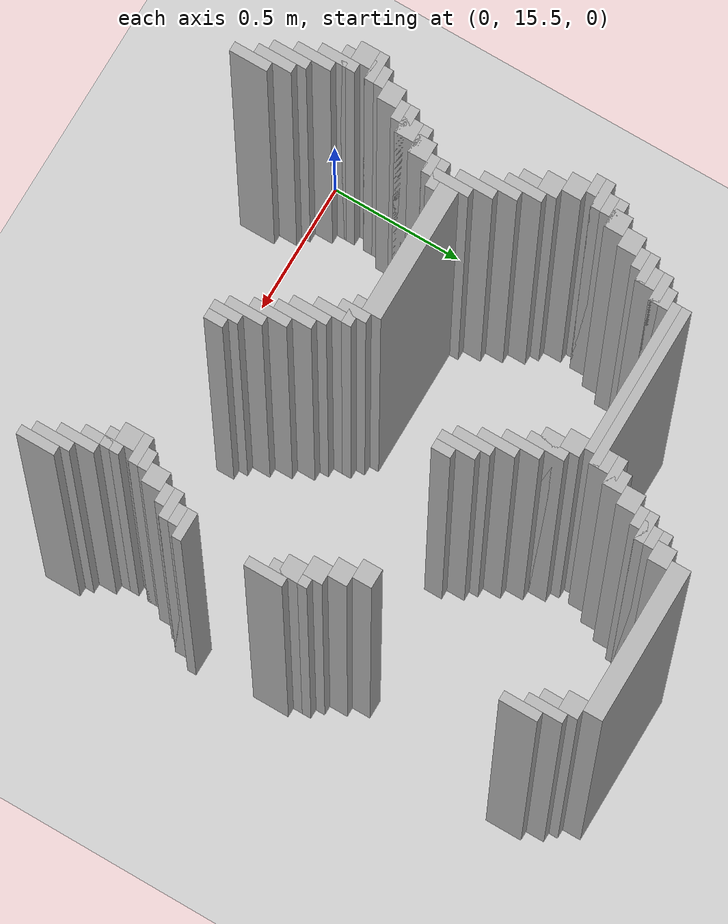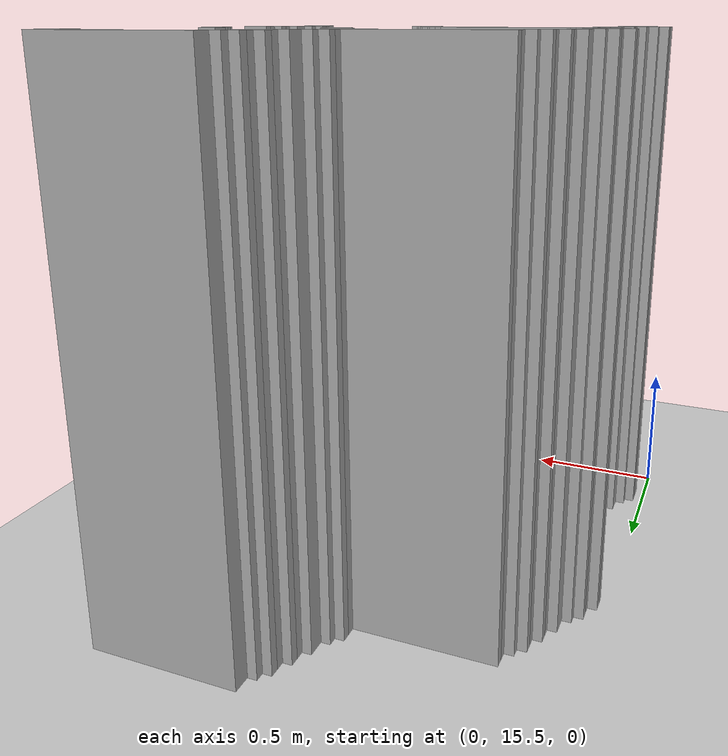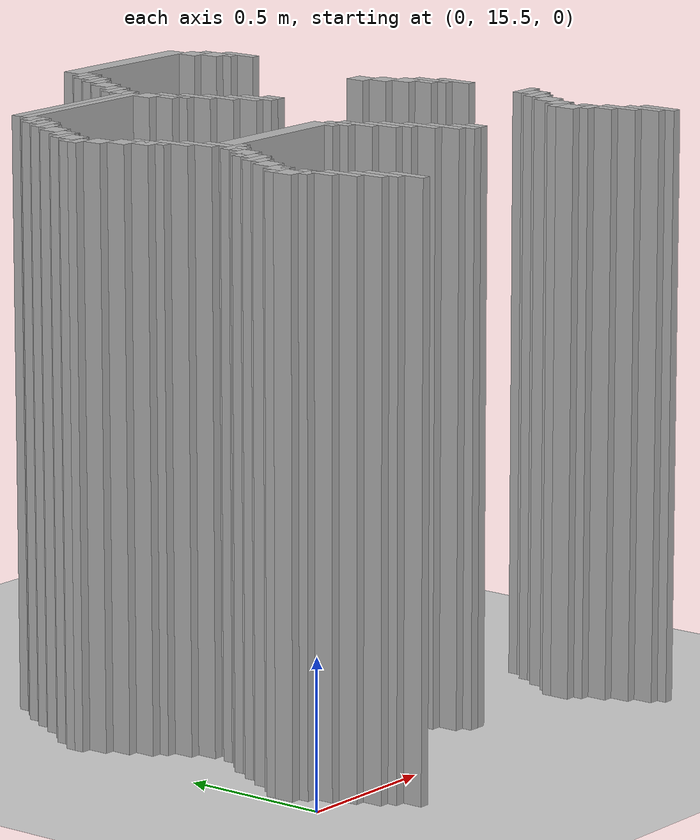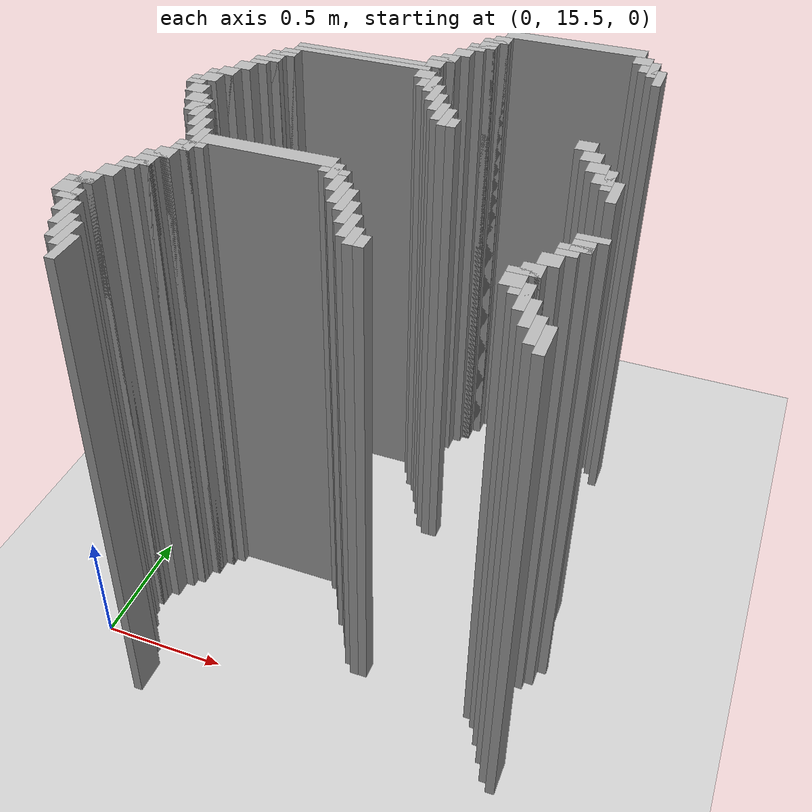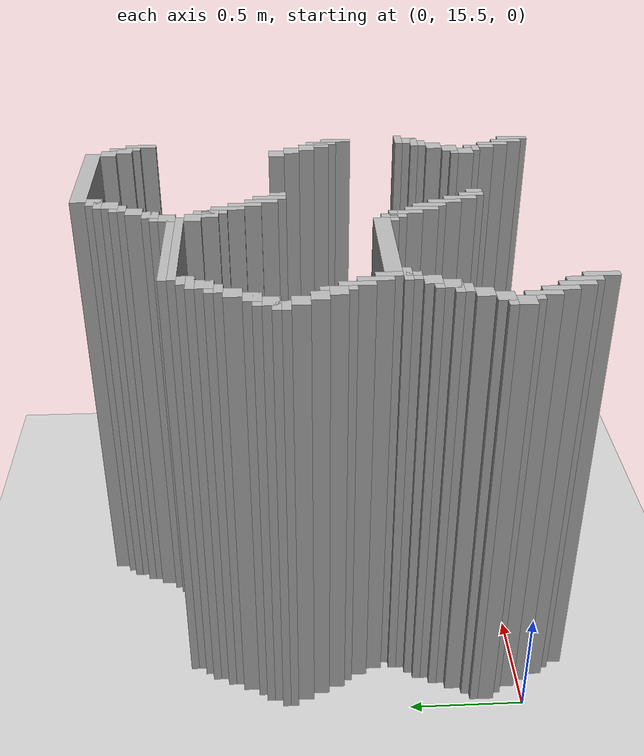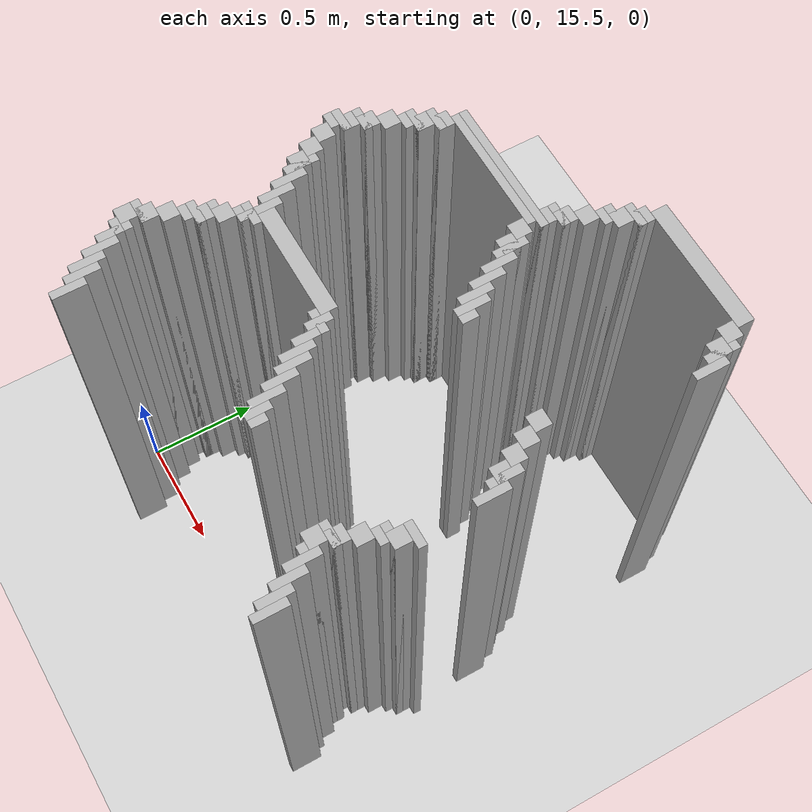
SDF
<sdf version="1.6">
 <world name="slam_world">
  <model name="ground_plane">
   <static>true</static>
   <link name="link">
    <collision name="collision">
     <geometry><plane><normal>0 0 1</normal><size>100 100</size></plane></geometry>
    </collision>
    <visual name="visual">
     <geometry><plane><normal>0 0 1</normal><size>100 100</size></plane></geometry>
     <material>
      <ambient>0.8 0.8 0.8 1</ambient>
      <diffuse>0.8 0.8 0.8 1</diffuse>
      <specular>0.8 0.8 0.8 1</specular>
     </material>
    </visual>
   </link>
  </model>
  <model name="wall_0">
   <static>true</static>
   <pose>1.2877030162412992 17.366589327146173 1.0 0 0 0</pose>
   <link name="link">
    <collision name="collision">
     <geometry><box><size>0.5568445475638051 0.06960556844547564 2.0</size></box></geometry>
    </collision>
    <visual name="visual">
     <geometry><box><size>0.5568445475638051 0.06960556844547564 2.0</size></box></geometry>
     <material><ambient>0.5 0.5 0.5 1</ambient><diffuse>0.7 0.7 0.7 1</diffuse></material>
    </visual>
   </link>
  </model>
  <model name="wall_11">
   <static>true</static>
   <pose>1.0092807424593968 17.296983758700694 1.0 0 0 0</pose>
   <link name="link">
    <collision name="collision">
     <geometry><box><size>0.06960556844547564 0.06960556844547564 2.0</size></box></geometry>
    </collision>
    <visual name="visual">
     <geometry><box><size>0.06960556844547564 0.06960556844547564 2.0</size></box></geometry>
     <material><ambient>0.5 0.5 0.5 1</ambient><diffuse>0.7 0.7 0.7 1</diffuse></material>
    </visual>
   </link>
  </model>
  <model name="wall_12">
   <static>true</static>
   <pose>1.5661252900232019 17.296983758700694 1.0 0 0 0</pose>
   <link name="link">
    <collision name="collision">
     <geometry><box><size>0.06960556844547564 0.06960556844547564 2.0</size></box></geometry>
    </collision>
    <visual name="visual">
     <geometry><box><size>0.06960556844547564 0.06960556844547564 2.0</size></box></geometry>
     <material><ambient>0.5 0.5 0.5 1</ambient><diffuse>0.7 0.7 0.7 1</diffuse></material>
    </visual>
   </link>
  </model>
  <model name="wall_31">
   <static>true</static>
   <pose>0.9918793503480278 17.279582366589327 1.0 0 0 0</pose>
   <link name="link">
    <collision name="collision">
     <geometry><box><size>0.10440835266821345 0.03480278422273782 2.0</size></box></geometry>
    </collision>
    <visual name="visual">
     <geometry><box><size>0.10440835266821345 0.03480278422273782 2.0</size></box></geometry>
     <material><ambient>0.5 0.5 0.5 1</ambient><diffuse>0.7 0.7 0.7 1</diffuse></material>
    </visual>
   </link>
  </model>
  <model name="wall_32">
   <static>true</static>
   <pose>1.6183294663573085 17.22737819025522 1.0 0 0 0</pose>
   <link name="link">
    <collision name="collision">
     <geometry><box><size>0.03480278422273782 0.13921113689095127 2.0</size></box></geometry>
    </collision>
    <visual name="visual">
     <geometry><box><size>0.03480278422273782 0.13921113689095127 2.0</size></box></geometry>
     <material><ambient>0.5 0.5 0.5 1</ambient><diffuse>0.7 0.7 0.7 1</diffuse></material>
    </visual>
   </link>
  </model>
  <model name="wall_51">
   <static>true</static>
   <pose>0.974477958236659 17.22737819025522 1.0 0 0 0</pose>
   <link name="link">
    <collision name="collision">
     <geometry><box><size>0.06960556844547564 0.06960556844547564 2.0</size></box></geometry>
    </collision>
    <visual name="visual">
     <geometry><box><size>0.06960556844547564 0.06960556844547564 2.0</size></box></geometry>
     <material><ambient>0.5 0.5 0.5 1</ambient><diffuse>0.7 0.7 0.7 1</diffuse></material>
    </visual>
   </link>
  </model>
  <model name="wall_52">
   <static>true</static>
   <pose>1.6009280742459395 17.22737819025522 1.0 0 0 0</pose>
   <link name="link">
    <collision name="collision">
     <geometry><box><size>0.06960556844547564 0.06960556844547564 2.0</size></box></geometry>
    </collision>
    <visual name="visual">
     <geometry><box><size>0.06960556844547564 0.06960556844547564 2.0</size></box></geometry>
     <material><ambient>0.5 0.5 0.5 1</ambient><diffuse>0.7 0.7 0.7 1</diffuse></material>
    </visual>
   </link>
  </model>
  <model name="wall_71">
   <static>true</static>
   <pose>0.95707656612529 17.209976798143853 1.0 0 0 0</pose>
   <link name="link">
    <collision name="collision">
     <geometry><box><size>0.10440835266821345 0.03480278422273782 2.0</size></box></geometry>
    </collision>
    <visual name="visual">
     <geometry><box><size>0.10440835266821345 0.03480278422273782 2.0</size></box></geometry>
     <material><ambient>0.5 0.5 0.5 1</ambient><diffuse>0.7 0.7 0.7 1</diffuse></material>
    </visual>
   </link>
  </model>
  <model name="wall_72">
   <static>true</static>
   <pose>1.6531322505800463 17.157772621809745 1.0 0 0 0</pose>
   <link name="link">
    <collision name="collision">
     <geometry><box><size>0.03480278422273782 0.13921113689095127 2.0</size></box></geometry>
    </collision>
    <visual name="visual">
     <geometry><box><size>0.03480278422273782 0.13921113689095127 2.0</size></box></geometry>
     <material><ambient>0.5 0.5 0.5 1</ambient><diffuse>0.7 0.7 0.7 1</diffuse></material>
    </visual>
   </link>
  </model>
  <model name="wall_91">
   <static>true</static>
   <pose>0.9396751740139211 17.17517401392111 1.0 0 0 0</pose>
   <link name="link">
    <collision name="collision">
     <geometry><box><size>0.06960556844547564 0.03480278422273782 2.0</size></box></geometry>
    </collision>
    <visual name="visual">
     <geometry><box><size>0.06960556844547564 0.03480278422273782 2.0</size></box></geometry>
     <material><ambient>0.5 0.5 0.5 1</ambient><diffuse>0.7 0.7 0.7 1</diffuse></material>
    </visual>
   </link>
  </model>
  <model name="wall_101">
   <static>true</static>
   <pose>0.9048723897911832 17.122969837587007 1.0 0 0 0</pose>
   <link name="link">
    <collision name="collision">
     <geometry><box><size>0.06960556844547564 0.06960556844547564 2.0</size></box></geometry>
    </collision>
    <visual name="visual">
     <geometry><box><size>0.06960556844547564 0.06960556844547564 2.0</size></box></geometry>
     <material><ambient>0.5 0.5 0.5 1</ambient><diffuse>0.7 0.7 0.7 1</diffuse></material>
    </visual>
   </link>
  </model>
  <model name="wall_121">
   <static>true</static>
   <pose>0.8700696055684455 17.053364269141532 1.0 0 0 0</pose>
   <link name="link">
    <collision name="collision">
     <geometry><box><size>0.06960556844547564 0.06960556844547564 2.0</size></box></geometry>
    </collision>
    <visual name="visual">
     <geometry><box><size>0.06960556844547564 0.06960556844547564 2.0</size></box></geometry>
     <material><ambient>0.5 0.5 0.5 1</ambient><diffuse>0.7 0.7 0.7 1</diffuse></material>
    </visual>
   </link>
  </model>
  <model name="wall_141">
   <static>true</static>
   <pose>0.8526682134570766 17.035962877030162 1.0 0 0 0</pose>
   <link name="link">
    <collision name="collision">
     <geometry><box><size>0.10440835266821345 0.03480278422273782 2.0</size></box></geometry>
    </collision>
    <visual name="visual">
     <geometry><box><size>0.10440835266821345 0.03480278422273782 2.0</size></box></geometry>
     <material><ambient>0.5 0.5 0.5 1</ambient><diffuse>0.7 0.7 0.7 1</diffuse></material>
    </visual>
   </link>
  </model>
  <model name="wall_161">
   <static>true</static>
   <pose>0.8352668213457076 16.983758700696054 1.0 0 0 0</pose>
   <link name="link">
    <collision name="collision">
     <geometry><box><size>0.06960556844547564 0.06960556844547564 2.0</size></box></geometry>
    </collision>
    <visual name="visual">
     <geometry><box><size>0.06960556844547564 0.06960556844547564 2.0</size></box></geometry>
     <material><ambient>0.5 0.5 0.5 1</ambient><diffuse>0.7 0.7 0.7 1</diffuse></material>
    </visual>
   </link>
  </model>
  <model name="wall_171">
   <static>true</static>
   <pose>0.574245939675174 16.966357308584687 1.0 0 0 0</pose>
   <link name="link">
    <collision name="collision">
     <geometry><box><size>0.5916473317865429 0.03480278422273782 2.0</size></box></geometry>
    </collision>
    <visual name="visual">
     <geometry><box><size>0.5916473317865429 0.03480278422273782 2.0</size></box></geometry>
     <material><ambient>0.5 0.5 0.5 1</ambient><diffuse>0.7 0.7 0.7 1</diffuse></material>
    </visual>
   </link>
  </model>
  <model name="wall_182">
   <static>true</static>
   <pose>0.5568445475638051 16.93155452436195 1.0 0 0 0</pose>
   <link name="link">
    <collision name="collision">
     <geometry><box><size>0.5568445475638051 0.03480278422273782 2.0</size></box></geometry>
    </collision>
    <visual name="visual">
     <geometry><box><size>0.5568445475638051 0.03480278422273782 2.0</size></box></geometry>
     <material><ambient>0.5 0.5 0.5 1</ambient><diffuse>0.7 0.7 0.7 1</diffuse></material>
    </visual>
   </link>
  </model>
  <model name="wall_192">
   <static>true</static>
   <pose>0.27842227378190254 16.87935034802784 1.0 0 0 0</pose>
   <link name="link">
    <collision name="collision">
     <geometry><box><size>0.06960556844547564 0.06960556844547564 2.0</size></box></geometry>
    </collision>
    <visual name="visual">
     <geometry><box><size>0.06960556844547564 0.06960556844547564 2.0</size></box></geometry>
     <material><ambient>0.5 0.5 0.5 1</ambient><diffuse>0.7 0.7 0.7 1</diffuse></material>
    </visual>
   </link>
  </model>
  <model name="wall_193">
   <static>true</static>
   <pose>0.8352668213457076 16.87935034802784 1.0 0 0 0</pose>
   <link name="link">
    <collision name="collision">
     <geometry><box><size>0.06960556844547564 0.06960556844547564 2.0</size></box></geometry>
    </collision>
    <visual name="visual">
     <geometry><box><size>0.06960556844547564 0.06960556844547564 2.0</size></box></geometry>
     <material><ambient>0.5 0.5 0.5 1</ambient><diffuse>0.7 0.7 0.7 1</diffuse></material>
    </visual>
   </link>
  </model>
  <model name="wall_200">
   <static>true</static>
   <pose>0.2610208816705336 16.86194895591647 1.0 0 0 0</pose>
   <link name="link">
    <collision name="collision">
     <geometry><box><size>0.10440835266821345 0.03480278422273782 2.0</size></box></geometry>
    </collision>
    <visual name="visual">
     <geometry><box><size>0.10440835266821345 0.03480278422273782 2.0</size></box></geometry>
     <material><ambient>0.5 0.5 0.5 1</ambient><diffuse>0.7 0.7 0.7 1</diffuse></material>
    </visual>
   </link>
  </model>
  <model name="wall_201">
   <static>true</static>
   <pose>0.8874709976798143 16.809744779582367 1.0 0 0 0</pose>
   <link name="link">
    <collision name="collision">
     <geometry><box><size>0.03480278422273782 0.13921113689095127 2.0</size></box></geometry>
    </collision>
    <visual name="visual">
     <geometry><box><size>0.03480278422273782 0.13921113689095127 2.0</size></box></geometry>
     <material><ambient>0.5 0.5 0.5 1</ambient><diffuse>0.7 0.7 0.7 1</diffuse></material>
    </visual>
   </link>
  </model>
  <model name="wall_208">
   <static>true</static>
   <pose>0.24361948955916474 16.809744779582367 1.0 0 0 0</pose>
   <link name="link">
    <collision name="collision">
     <geometry><box><size>0.06960556844547564 0.06960556844547564 2.0</size></box></geometry>
    </collision>
    <visual name="visual">
     <geometry><box><size>0.06960556844547564 0.06960556844547564 2.0</size></box></geometry>
     <material><ambient>0.5 0.5 0.5 1</ambient><diffuse>0.7 0.7 0.7 1</diffuse></material>
    </visual>
   </link>
  </model>
  <model name="wall_209">
   <static>true</static>
   <pose>0.8700696055684455 16.809744779582367 1.0 0 0 0</pose>
   <link name="link">
    <collision name="collision">
     <geometry><box><size>0.06960556844547564 0.06960556844547564 2.0</size></box></geometry>
    </collision>
    <visual name="visual">
     <geometry><box><size>0.06960556844547564 0.06960556844547564 2.0</size></box></geometry>
     <material><ambient>0.5 0.5 0.5 1</ambient><diffuse>0.7 0.7 0.7 1</diffuse></material>
    </visual>
   </link>
  </model>
  <model name="wall_216">
   <static>true</static>
   <pose>0.2262180974477958 16.792343387470996 1.0 0 0 0</pose>
   <link name="link">
    <collision name="collision">
     <geometry><box><size>0.10440835266821345 0.03480278422273782 2.0</size></box></geometry>
    </collision>
    <visual name="visual">
     <geometry><box><size>0.10440835266821345 0.03480278422273782 2.0</size></box></geometry>
     <material><ambient>0.5 0.5 0.5 1</ambient><diffuse>0.7 0.7 0.7 1</diffuse></material>
    </visual>
   </link>
  </model>
  <model name="wall_217">
   <static>true</static>
   <pose>0.9222737819025522 16.74013921113689 1.0 0 0 0</pose>
   <link name="link">
    <collision name="collision">
     <geometry><box><size>0.03480278422273782 0.13921113689095127 2.0</size></box></geometry>
    </collision>
    <visual name="visual">
     <geometry><box><size>0.03480278422273782 0.13921113689095127 2.0</size></box></geometry>
     <material><ambient>0.5 0.5 0.5 1</ambient><diffuse>0.7 0.7 0.7 1</diffuse></material>
    </visual>
   </link>
  </model>
  <model name="wall_224">
   <static>true</static>
   <pose>0.2088167053364269 16.75754060324826 1.0 0 0 0</pose>
   <link name="link">
    <collision name="collision">
     <geometry><box><size>0.06960556844547564 0.03480278422273782 2.0</size></box></geometry>
    </collision>
    <visual name="visual">
     <geometry><box><size>0.06960556844547564 0.03480278422273782 2.0</size></box></geometry>
     <material><ambient>0.5 0.5 0.5 1</ambient><diffuse>0.7 0.7 0.7 1</diffuse></material>
    </visual>
   </link>
  </model>
  <model name="wall_228">
   <static>true</static>
   <pose>0.17401392111368907 16.70533642691415 1.0 0 0 0</pose>
   <link name="link">
    <collision name="collision">
     <geometry><box><size>0.06960556844547564 0.06960556844547564 2.0</size></box></geometry>
    </collision>
    <visual name="visual">
     <geometry><box><size>0.06960556844547564 0.06960556844547564 2.0</size></box></geometry>
     <material><ambient>0.5 0.5 0.5 1</ambient><diffuse>0.7 0.7 0.7 1</diffuse></material>
    </visual>
   </link>
  </model>
  <model name="wall_229">
   <static>true</static>
   <pose>0.95707656612529 16.670533642691414 1.0 0 0 0</pose>
   <link name="link">
    <collision name="collision">
     <geometry><box><size>0.03480278422273782 0.13921113689095127 2.0</size></box></geometry>
    </collision>
    <visual name="visual">
     <geometry><box><size>0.03480278422273782 0.13921113689095127 2.0</size></box></geometry>
     <material><ambient>0.5 0.5 0.5 1</ambient><diffuse>0.7 0.7 0.7 1</diffuse></material>
    </visual>
   </link>
  </model>
  <model name="wall_236">
   <static>true</static>
   <pose>0.13921113689095127 16.635730858468676 1.0 0 0 0</pose>
   <link name="link">
    <collision name="collision">
     <geometry><box><size>0.06960556844547564 0.06960556844547564 2.0</size></box></geometry>
    </collision>
    <visual name="visual">
     <geometry><box><size>0.06960556844547564 0.06960556844547564 2.0</size></box></geometry>
     <material><ambient>0.5 0.5 0.5 1</ambient><diffuse>0.7 0.7 0.7 1</diffuse></material>
    </visual>
   </link>
  </model>
  <model name="wall_237">
   <static>true</static>
   <pose>0.9918793503480278 16.60092807424594 1.0 0 0 0</pose>
   <link name="link">
    <collision name="collision">
     <geometry><box><size>0.03480278422273782 0.13921113689095127 2.0</size></box></geometry>
    </collision>
    <visual name="visual">
     <geometry><box><size>0.03480278422273782 0.13921113689095127 2.0</size></box></geometry>
     <material><ambient>0.5 0.5 0.5 1</ambient><diffuse>0.7 0.7 0.7 1</diffuse></material>
    </visual>
   </link>
  </model>
  <model name="wall_244">
   <static>true</static>
   <pose>0.12180974477958237 16.61832946635731 1.0 0 0 0</pose>
   <link name="link">
    <collision name="collision">
     <geometry><box><size>0.10440835266821345 0.03480278422273782 2.0</size></box></geometry>
    </collision>
    <visual name="visual">
     <geometry><box><size>0.10440835266821345 0.03480278422273782 2.0</size></box></geometry>
     <material><ambient>0.5 0.5 0.5 1</ambient><diffuse>0.7 0.7 0.7 1</diffuse></material>
    </visual>
   </link>
  </model>
  <model name="wall_245">
   <static>true</static>
   <pose>1.0266821345707655 16.5661252900232 1.0 0 0 0</pose>
   <link name="link">
    <collision name="collision">
     <geometry><box><size>0.03480278422273782 0.13921113689095127 2.0</size></box></geometry>
    </collision>
    <visual name="visual">
     <geometry><box><size>0.03480278422273782 0.13921113689095127 2.0</size></box></geometry>
     <material><ambient>0.5 0.5 0.5 1</ambient><diffuse>0.7 0.7 0.7 1</diffuse></material>
    </visual>
   </link>
  </model>
  <model name="wall_252">
   <static>true</static>
   <pose>0.10440835266821345 16.5661252900232 1.0 0 0 0</pose>
   <link name="link">
    <collision name="collision">
     <geometry><box><size>0.06960556844547564 0.06960556844547564 2.0</size></box></geometry>
    </collision>
    <visual name="visual">
     <geometry><box><size>0.06960556844547564 0.06960556844547564 2.0</size></box></geometry>
     <material><ambient>0.5 0.5 0.5 1</ambient><diffuse>0.7 0.7 0.7 1</diffuse></material>
    </visual>
   </link>
  </model>
  <model name="wall_256">
   <static>true</static>
   <pose>0.08700696055684454 16.54872389791183 1.0 0 0 0</pose>
   <link name="link">
    <collision name="collision">
     <geometry><box><size>0.10440835266821345 0.03480278422273782 2.0</size></box></geometry>
    </collision>
    <visual name="visual">
     <geometry><box><size>0.10440835266821345 0.03480278422273782 2.0</size></box></geometry>
     <material><ambient>0.5 0.5 0.5 1</ambient><diffuse>0.7 0.7 0.7 1</diffuse></material>
    </visual>
   </link>
  </model>
  <model name="wall_257">
   <static>true</static>
   <pose>1.0614849187935034 16.531322505800464 1.0 0 0 0</pose>
   <link name="link">
    <collision name="collision">
     <geometry><box><size>0.03480278422273782 0.06960556844547564 2.0</size></box></geometry>
    </collision>
    <visual name="visual">
     <geometry><box><size>0.03480278422273782 0.06960556844547564 2.0</size></box></geometry>
     <material><ambient>0.5 0.5 0.5 1</ambient><diffuse>0.7 0.7 0.7 1</diffuse></material>
    </visual>
   </link>
  </model>
  <model name="wall_258">
   <static>true</static>
   <pose>1.531322505800464 16.531322505800464 1.0 0 0 0</pose>
   <link name="link">
    <collision name="collision">
     <geometry><box><size>0.06960556844547564 0.06960556844547564 2.0</size></box></geometry>
    </collision>
    <visual name="visual">
     <geometry><box><size>0.06960556844547564 0.06960556844547564 2.0</size></box></geometry>
     <material><ambient>0.5 0.5 0.5 1</ambient><diffuse>0.7 0.7 0.7 1</diffuse></material>
    </visual>
   </link>
  </model>
  <model name="wall_273">
   <static>true</static>
   <pose>0.06960556844547564 16.513921113689094 1.0 0 0 0</pose>
   <link name="link">
    <collision name="collision">
     <geometry><box><size>0.06960556844547564 0.03480278422273782 2.0</size></box></geometry>
    </collision>
    <visual name="visual">
     <geometry><box><size>0.06960556844547564 0.03480278422273782 2.0</size></box></geometry>
     <material><ambient>0.5 0.5 0.5 1</ambient><diffuse>0.7 0.7 0.7 1</diffuse></material>
    </visual>
   </link>
  </model>
  <model name="wall_277">
   <static>true</static>
   <pose>0.10440835266821345 16.46171693735499 1.0 0 0 0</pose>
   <link name="link">
    <collision name="collision">
     <geometry><box><size>0.06960556844547564 0.06960556844547564 2.0</size></box></geometry>
    </collision>
    <visual name="visual">
     <geometry><box><size>0.06960556844547564 0.06960556844547564 2.0</size></box></geometry>
     <material><ambient>0.5 0.5 0.5 1</ambient><diffuse>0.7 0.7 0.7 1</diffuse></material>
    </visual>
   </link>
  </model>
  <model name="wall_278">
   <static>true</static>
   <pose>1.5661252900232019 16.46171693735499 1.0 0 0 0</pose>
   <link name="link">
    <collision name="collision">
     <geometry><box><size>0.06960556844547564 0.06960556844547564 2.0</size></box></geometry>
    </collision>
    <visual name="visual">
     <geometry><box><size>0.06960556844547564 0.06960556844547564 2.0</size></box></geometry>
     <material><ambient>0.5 0.5 0.5 1</ambient><diffuse>0.7 0.7 0.7 1</diffuse></material>
    </visual>
   </link>
  </model>
  <model name="wall_300">
   <static>true</static>
   <pose>0.13921113689095127 16.39211136890951 1.0 0 0 0</pose>
   <link name="link">
    <collision name="collision">
     <geometry><box><size>0.06960556844547564 0.06960556844547564 2.0</size></box></geometry>
    </collision>
    <visual name="visual">
     <geometry><box><size>0.06960556844547564 0.06960556844547564 2.0</size></box></geometry>
     <material><ambient>0.5 0.5 0.5 1</ambient><diffuse>0.7 0.7 0.7 1</diffuse></material>
    </visual>
   </link>
  </model>
  <model name="wall_301">
   <static>true</static>
   <pose>1.6009280742459395 16.39211136890951 1.0 0 0 0</pose>
   <link name="link">
    <collision name="collision">
     <geometry><box><size>0.06960556844547564 0.06960556844547564 2.0</size></box></geometry>
    </collision>
    <visual name="visual">
     <geometry><box><size>0.06960556844547564 0.06960556844547564 2.0</size></box></geometry>
     <material><ambient>0.5 0.5 0.5 1</ambient><diffuse>0.7 0.7 0.7 1</diffuse></material>
    </visual>
   </link>
  </model>
  <model name="wall_317">
   <static>true</static>
   <pose>0.191415313225058 16.322505800464036 1.0 0 0 0</pose>
   <link name="link">
    <collision name="collision">
     <geometry><box><size>0.03480278422273782 0.13921113689095127 2.0</size></box></geometry>
    </collision>
    <visual name="visual">
     <geometry><box><size>0.03480278422273782 0.13921113689095127 2.0</size></box></geometry>
     <material><ambient>0.5 0.5 0.5 1</ambient><diffuse>0.7 0.7 0.7 1</diffuse></material>
    </visual>
   </link>
  </model>
  <model name="wall_318">
   <static>true</static>
   <pose>1.6531322505800463 16.322505800464036 1.0 0 0 0</pose>
   <link name="link">
    <collision name="collision">
     <geometry><box><size>0.03480278422273782 0.13921113689095127 2.0</size></box></geometry>
    </collision>
    <visual name="visual">
     <geometry><box><size>0.03480278422273782 0.13921113689095127 2.0</size></box></geometry>
     <material><ambient>0.5 0.5 0.5 1</ambient><diffuse>0.7 0.7 0.7 1</diffuse></material>
    </visual>
   </link>
  </model>
  <model name="wall_334">
   <static>true</static>
   <pose>0.17401392111368907 16.322505800464036 1.0 0 0 0</pose>
   <link name="link">
    <collision name="collision">
     <geometry><box><size>0.06960556844547564 0.06960556844547564 2.0</size></box></geometry>
    </collision>
    <visual name="visual">
     <geometry><box><size>0.06960556844547564 0.06960556844547564 2.0</size></box></geometry>
     <material><ambient>0.5 0.5 0.5 1</ambient><diffuse>0.7 0.7 0.7 1</diffuse></material>
    </visual>
   </link>
  </model>
  <model name="wall_335">
   <static>true</static>
   <pose>1.6357308584686774 16.322505800464036 1.0 0 0 0</pose>
   <link name="link">
    <collision name="collision">
     <geometry><box><size>0.06960556844547564 0.06960556844547564 2.0</size></box></geometry>
    </collision>
    <visual name="visual">
     <geometry><box><size>0.06960556844547564 0.06960556844547564 2.0</size></box></geometry>
     <material><ambient>0.5 0.5 0.5 1</ambient><diffuse>0.7 0.7 0.7 1</diffuse></material>
    </visual>
   </link>
  </model>
  <model name="wall_351">
   <static>true</static>
   <pose>0.2262180974477958 16.25290023201856 1.0 0 0 0</pose>
   <link name="link">
    <collision name="collision">
     <geometry><box><size>0.03480278422273782 0.13921113689095127 2.0</size></box></geometry>
    </collision>
    <visual name="visual">
     <geometry><box><size>0.03480278422273782 0.13921113689095127 2.0</size></box></geometry>
     <material><ambient>0.5 0.5 0.5 1</ambient><diffuse>0.7 0.7 0.7 1</diffuse></material>
    </visual>
   </link>
  </model>
  <model name="wall_352">
   <static>true</static>
   <pose>1.6879350348027842 16.25290023201856 1.0 0 0 0</pose>
   <link name="link">
    <collision name="collision">
     <geometry><box><size>0.03480278422273782 0.13921113689095127 2.0</size></box></geometry>
    </collision>
    <visual name="visual">
     <geometry><box><size>0.03480278422273782 0.13921113689095127 2.0</size></box></geometry>
     <material><ambient>0.5 0.5 0.5 1</ambient><diffuse>0.7 0.7 0.7 1</diffuse></material>
    </visual>
   </link>
  </model>
  <model name="wall_376">
   <static>true</static>
   <pose>0.2610208816705336 16.183294663573086 1.0 0 0 0</pose>
   <link name="link">
    <collision name="collision">
     <geometry><box><size>0.03480278422273782 0.13921113689095127 2.0</size></box></geometry>
    </collision>
    <visual name="visual">
     <geometry><box><size>0.03480278422273782 0.13921113689095127 2.0</size></box></geometry>
     <material><ambient>0.5 0.5 0.5 1</ambient><diffuse>0.7 0.7 0.7 1</diffuse></material>
    </visual>
   </link>
  </model>
  <model name="wall_401">
   <static>true</static>
   <pose>0.29582366589327147 16.09628770301624 1.0 0 0 0</pose>
   <link name="link">
    <collision name="collision">
     <geometry><box><size>0.03480278422273782 0.17401392111368907 2.0</size></box></geometry>
    </collision>
    <visual name="visual">
     <geometry><box><size>0.03480278422273782 0.17401392111368907 2.0</size></box></geometry>
     <material><ambient>0.5 0.5 0.5 1</ambient><diffuse>0.7 0.7 0.7 1</diffuse></material>
    </visual>
   </link>
  </model>
  <model name="wall_418">
   <static>true</static>
   <pose>0.5568445475638051 16.113689095127608 1.0 0 0 0</pose>
   <link name="link">
    <collision name="collision">
     <geometry><box><size>0.4872389791183295 0.06960556844547564 2.0</size></box></geometry>
    </collision>
    <visual name="visual">
     <geometry><box><size>0.4872389791183295 0.06960556844547564 2.0</size></box></geometry>
     <material><ambient>0.5 0.5 0.5 1</ambient><diffuse>0.7 0.7 0.7 1</diffuse></material>
    </visual>
   </link>
  </model>
  <model name="wall_431">
   <static>true</static>
   <pose>0.8178654292343387 16.061484918793504 1.0 0 0 0</pose>
   <link name="link">
    <collision name="collision">
     <geometry><box><size>0.03480278422273782 0.10440835266821345 2.0</size></box></geometry>
    </collision>
    <visual name="visual">
     <geometry><box><size>0.03480278422273782 0.10440835266821345 2.0</size></box></geometry>
     <material><ambient>0.5 0.5 0.5 1</ambient><diffuse>0.7 0.7 0.7 1</diffuse></material>
    </visual>
   </link>
  </model>
  <model name="wall_442">
   <static>true</static>
   <pose>0.29582366589327147 16.061484918793504 1.0 0 0 0</pose>
   <link name="link">
    <collision name="collision">
     <geometry><box><size>0.10440835266821345 0.03480278422273782 2.0</size></box></geometry>
    </collision>
    <visual name="visual">
     <geometry><box><size>0.10440835266821345 0.03480278422273782 2.0</size></box></geometry>
     <material><ambient>0.5 0.5 0.5 1</ambient><diffuse>0.7 0.7 0.7 1</diffuse></material>
    </visual>
   </link>
  </model>
  <model name="wall_443">
   <static>true</static>
   <pose>0.8178654292343387 16.061484918793504 1.0 0 0 0</pose>
   <link name="link">
    <collision name="collision">
     <geometry><box><size>0.10440835266821345 0.03480278422273782 2.0</size></box></geometry>
    </collision>
    <visual name="visual">
     <geometry><box><size>0.10440835266821345 0.03480278422273782 2.0</size></box></geometry>
     <material><ambient>0.5 0.5 0.5 1</ambient><diffuse>0.7 0.7 0.7 1</diffuse></material>
    </visual>
   </link>
  </model>
  <model name="wall_455">
   <static>true</static>
   <pose>0.27842227378190254 16.026682134570766 1.0 0 0 0</pose>
   <link name="link">
    <collision name="collision">
     <geometry><box><size>0.06960556844547564 0.03480278422273782 2.0</size></box></geometry>
    </collision>
    <visual name="visual">
     <geometry><box><size>0.06960556844547564 0.03480278422273782 2.0</size></box></geometry>
     <material><ambient>0.5 0.5 0.5 1</ambient><diffuse>0.7 0.7 0.7 1</diffuse></material>
    </visual>
   </link>
  </model>
  <model name="wall_456">
   <static>true</static>
   <pose>0.8526682134570766 15.991879350348027 1.0 0 0 0</pose>
   <link name="link">
    <collision name="collision">
     <geometry><box><size>0.03480278422273782 0.10440835266821345 2.0</size></box></geometry>
    </collision>
    <visual name="visual">
     <geometry><box><size>0.03480278422273782 0.10440835266821345 2.0</size></box></geometry>
     <material><ambient>0.5 0.5 0.5 1</ambient><diffuse>0.7 0.7 0.7 1</diffuse></material>
    </visual>
   </link>
  </model>
  <model name="wall_468">
   <static>true</static>
   <pose>0.24361948955916474 15.974477958236658 1.0 0 0 0</pose>
   <link name="link">
    <collision name="collision">
     <geometry><box><size>0.06960556844547564 0.06960556844547564 2.0</size></box></geometry>
    </collision>
    <visual name="visual">
     <geometry><box><size>0.06960556844547564 0.06960556844547564 2.0</size></box></geometry>
     <material><ambient>0.5 0.5 0.5 1</ambient><diffuse>0.7 0.7 0.7 1</diffuse></material>
    </visual>
   </link>
  </model>
  <model name="wall_469">
   <static>true</static>
   <pose>0.8874709976798143 15.93967517401392 1.0 0 0 0</pose>
   <link name="link">
    <collision name="collision">
     <geometry><box><size>0.03480278422273782 0.13921113689095127 2.0</size></box></geometry>
    </collision>
    <visual name="visual">
     <geometry><box><size>0.03480278422273782 0.13921113689095127 2.0</size></box></geometry>
     <material><ambient>0.5 0.5 0.5 1</ambient><diffuse>0.7 0.7 0.7 1</diffuse></material>
    </visual>
   </link>
  </model>
  <model name="wall_481">
   <static>true</static>
   <pose>0.2262180974477958 15.95707656612529 1.0 0 0 0</pose>
   <link name="link">
    <collision name="collision">
     <geometry><box><size>0.10440835266821345 0.03480278422273782 2.0</size></box></geometry>
    </collision>
    <visual name="visual">
     <geometry><box><size>0.10440835266821345 0.03480278422273782 2.0</size></box></geometry>
     <material><ambient>0.5 0.5 0.5 1</ambient><diffuse>0.7 0.7 0.7 1</diffuse></material>
    </visual>
   </link>
  </model>
  <model name="wall_482">
   <static>true</static>
   <pose>0.9222737819025522 15.904872389791183 1.0 0 0 0</pose>
   <link name="link">
    <collision name="collision">
     <geometry><box><size>0.03480278422273782 0.13921113689095127 2.0</size></box></geometry>
    </collision>
    <visual name="visual">
     <geometry><box><size>0.03480278422273782 0.13921113689095127 2.0</size></box></geometry>
     <material><ambient>0.5 0.5 0.5 1</ambient><diffuse>0.7 0.7 0.7 1</diffuse></material>
    </visual>
   </link>
  </model>
  <model name="wall_483">
   <static>true</static>
   <pose>1.6879350348027842 15.95707656612529 1.0 0 0 0</pose>
   <link name="link">
    <collision name="collision">
     <geometry><box><size>0.10440835266821345 0.03480278422273782 2.0</size></box></geometry>
    </collision>
    <visual name="visual">
     <geometry><box><size>0.10440835266821345 0.03480278422273782 2.0</size></box></geometry>
     <material><ambient>0.5 0.5 0.5 1</ambient><diffuse>0.7 0.7 0.7 1</diffuse></material>
    </visual>
   </link>
  </model>
  <model name="wall_494">
   <static>true</static>
   <pose>0.2088167053364269 15.904872389791183 1.0 0 0 0</pose>
   <link name="link">
    <collision name="collision">
     <geometry><box><size>0.06960556844547564 0.06960556844547564 2.0</size></box></geometry>
    </collision>
    <visual name="visual">
     <geometry><box><size>0.06960556844547564 0.06960556844547564 2.0</size></box></geometry>
     <material><ambient>0.5 0.5 0.5 1</ambient><diffuse>0.7 0.7 0.7 1</diffuse></material>
    </visual>
   </link>
  </model>
  <model name="wall_495">
   <static>true</static>
   <pose>1.6705336426914152 15.904872389791183 1.0 0 0 0</pose>
   <link name="link">
    <collision name="collision">
     <geometry><box><size>0.06960556844547564 0.06960556844547564 2.0</size></box></geometry>
    </collision>
    <visual name="visual">
     <geometry><box><size>0.06960556844547564 0.06960556844547564 2.0</size></box></geometry>
     <material><ambient>0.5 0.5 0.5 1</ambient><diffuse>0.7 0.7 0.7 1</diffuse></material>
    </visual>
   </link>
  </model>
  <model name="wall_503">
   <static>true</static>
   <pose>0.191415313225058 15.887470997679813 1.0 0 0 0</pose>
   <link name="link">
    <collision name="collision">
     <geometry><box><size>0.10440835266821345 0.03480278422273782 2.0</size></box></geometry>
    </collision>
    <visual name="visual">
     <geometry><box><size>0.10440835266821345 0.03480278422273782 2.0</size></box></geometry>
     <material><ambient>0.5 0.5 0.5 1</ambient><diffuse>0.7 0.7 0.7 1</diffuse></material>
    </visual>
   </link>
  </model>
  <model name="wall_504">
   <static>true</static>
   <pose>0.95707656612529 15.835266821345707 1.0 0 0 0</pose>
   <link name="link">
    <collision name="collision">
     <geometry><box><size>0.03480278422273782 0.13921113689095127 2.0</size></box></geometry>
    </collision>
    <visual name="visual">
     <geometry><box><size>0.03480278422273782 0.13921113689095127 2.0</size></box></geometry>
     <material><ambient>0.5 0.5 0.5 1</ambient><diffuse>0.7 0.7 0.7 1</diffuse></material>
    </visual>
   </link>
  </model>
  <model name="wall_505">
   <static>true</static>
   <pose>1.6531322505800463 15.887470997679813 1.0 0 0 0</pose>
   <link name="link">
    <collision name="collision">
     <geometry><box><size>0.10440835266821345 0.03480278422273782 2.0</size></box></geometry>
    </collision>
    <visual name="visual">
     <geometry><box><size>0.10440835266821345 0.03480278422273782 2.0</size></box></geometry>
     <material><ambient>0.5 0.5 0.5 1</ambient><diffuse>0.7 0.7 0.7 1</diffuse></material>
    </visual>
   </link>
  </model>
  <model name="wall_516">
   <static>true</static>
   <pose>0.17401392111368907 15.852668213457076 1.0 0 0 0</pose>
   <link name="link">
    <collision name="collision">
     <geometry><box><size>0.06960556844547564 0.03480278422273782 2.0</size></box></geometry>
    </collision>
    <visual name="visual">
     <geometry><box><size>0.06960556844547564 0.03480278422273782 2.0</size></box></geometry>
     <material><ambient>0.5 0.5 0.5 1</ambient><diffuse>0.7 0.7 0.7 1</diffuse></material>
    </visual>
   </link>
  </model>
  <model name="wall_517">
   <static>true</static>
   <pose>1.6357308584686774 15.852668213457076 1.0 0 0 0</pose>
   <link name="link">
    <collision name="collision">
     <geometry><box><size>0.06960556844547564 0.03480278422273782 2.0</size></box></geometry>
    </collision>
    <visual name="visual">
     <geometry><box><size>0.06960556844547564 0.03480278422273782 2.0</size></box></geometry>
     <material><ambient>0.5 0.5 0.5 1</ambient><diffuse>0.7 0.7 0.7 1</diffuse></material>
    </visual>
   </link>
  </model>
  <model name="wall_523">
   <static>true</static>
   <pose>0.13921113689095127 15.80046403712297 1.0 0 0 0</pose>
   <link name="link">
    <collision name="collision">
     <geometry><box><size>0.06960556844547564 0.06960556844547564 2.0</size></box></geometry>
    </collision>
    <visual name="visual">
     <geometry><box><size>0.06960556844547564 0.06960556844547564 2.0</size></box></geometry>
     <material><ambient>0.5 0.5 0.5 1</ambient><diffuse>0.7 0.7 0.7 1</diffuse></material>
    </visual>
   </link>
  </model>
  <model name="wall_524">
   <static>true</static>
   <pose>0.9918793503480278 15.765661252900232 1.0 0 0 0</pose>
   <link name="link">
    <collision name="collision">
     <geometry><box><size>0.03480278422273782 0.13921113689095127 2.0</size></box></geometry>
    </collision>
    <visual name="visual">
     <geometry><box><size>0.03480278422273782 0.13921113689095127 2.0</size></box></geometry>
     <material><ambient>0.5 0.5 0.5 1</ambient><diffuse>0.7 0.7 0.7 1</diffuse></material>
    </visual>
   </link>
  </model>
  <model name="wall_525">
   <static>true</static>
   <pose>1.6009280742459395 15.80046403712297 1.0 0 0 0</pose>
   <link name="link">
    <collision name="collision">
     <geometry><box><size>0.06960556844547564 0.06960556844547564 2.0</size></box></geometry>
    </collision>
    <visual name="visual">
     <geometry><box><size>0.06960556844547564 0.06960556844547564 2.0</size></box></geometry>
     <material><ambient>0.5 0.5 0.5 1</ambient><diffuse>0.7 0.7 0.7 1</diffuse></material>
    </visual>
   </link>
  </model>
  <model name="wall_536">
   <static>true</static>
   <pose>0.10440835266821345 15.730858468677493 1.0 0 0 0</pose>
   <link name="link">
    <collision name="collision">
     <geometry><box><size>0.06960556844547564 0.06960556844547564 2.0</size></box></geometry>
    </collision>
    <visual name="visual">
     <geometry><box><size>0.06960556844547564 0.06960556844547564 2.0</size></box></geometry>
     <material><ambient>0.5 0.5 0.5 1</ambient><diffuse>0.7 0.7 0.7 1</diffuse></material>
    </visual>
   </link>
  </model>
  <model name="wall_537">
   <static>true</static>
   <pose>1.0266821345707655 15.713457076566124 1.0 0 0 0</pose>
   <link name="link">
    <collision name="collision">
     <geometry><box><size>0.03480278422273782 0.10440835266821345 2.0</size></box></geometry>
    </collision>
    <visual name="visual">
     <geometry><box><size>0.03480278422273782 0.10440835266821345 2.0</size></box></geometry>
     <material><ambient>0.5 0.5 0.5 1</ambient><diffuse>0.7 0.7 0.7 1</diffuse></material>
    </visual>
   </link>
  </model>
  <model name="wall_538">
   <static>true</static>
   <pose>1.5661252900232019 15.730858468677493 1.0 0 0 0</pose>
   <link name="link">
    <collision name="collision">
     <geometry><box><size>0.06960556844547564 0.06960556844547564 2.0</size></box></geometry>
    </collision>
    <visual name="visual">
     <geometry><box><size>0.06960556844547564 0.06960556844547564 2.0</size></box></geometry>
     <material><ambient>0.5 0.5 0.5 1</ambient><diffuse>0.7 0.7 0.7 1</diffuse></material>
    </visual>
   </link>
  </model>
  <model name="wall_549">
   <static>true</static>
   <pose>0.08700696055684454 15.713457076566124 1.0 0 0 0</pose>
   <link name="link">
    <collision name="collision">
     <geometry><box><size>0.10440835266821345 0.03480278422273782 2.0</size></box></geometry>
    </collision>
    <visual name="visual">
     <geometry><box><size>0.10440835266821345 0.03480278422273782 2.0</size></box></geometry>
     <material><ambient>0.5 0.5 0.5 1</ambient><diffuse>0.7 0.7 0.7 1</diffuse></material>
    </visual>
   </link>
  </model>
  <model name="wall_550">
   <static>true</static>
   <pose>1.0614849187935034 15.696055684454755 1.0 0 0 0</pose>
   <link name="link">
    <collision name="collision">
     <geometry><box><size>0.03480278422273782 0.06960556844547564 2.0</size></box></geometry>
    </collision>
    <visual name="visual">
     <geometry><box><size>0.03480278422273782 0.06960556844547564 2.0</size></box></geometry>
     <material><ambient>0.5 0.5 0.5 1</ambient><diffuse>0.7 0.7 0.7 1</diffuse></material>
    </visual>
   </link>
  </model>
  <model name="wall_551">
   <static>true</static>
   <pose>1.548723897911833 15.713457076566124 1.0 0 0 0</pose>
   <link name="link">
    <collision name="collision">
     <geometry><box><size>0.10440835266821345 0.03480278422273782 2.0</size></box></geometry>
    </collision>
    <visual name="visual">
     <geometry><box><size>0.10440835266821345 0.03480278422273782 2.0</size></box></geometry>
     <material><ambient>0.5 0.5 0.5 1</ambient><diffuse>0.7 0.7 0.7 1</diffuse></material>
    </visual>
   </link>
  </model>
  <model name="wall_562">
   <static>true</static>
   <pose>0.06960556844547564 15.661252900232018 1.0 0 0 0</pose>
   <link name="link">
    <collision name="collision">
     <geometry><box><size>0.06960556844547564 0.06960556844547564 2.0</size></box></geometry>
    </collision>
    <visual name="visual">
     <geometry><box><size>0.06960556844547564 0.06960556844547564 2.0</size></box></geometry>
     <material><ambient>0.5 0.5 0.5 1</ambient><diffuse>0.7 0.7 0.7 1</diffuse></material>
    </visual>
   </link>
  </model>
  <model name="wall_563">
   <static>true</static>
   <pose>1.531322505800464 15.661252900232018 1.0 0 0 0</pose>
   <link name="link">
    <collision name="collision">
     <geometry><box><size>0.06960556844547564 0.06960556844547564 2.0</size></box></geometry>
    </collision>
    <visual name="visual">
     <geometry><box><size>0.06960556844547564 0.06960556844547564 2.0</size></box></geometry>
     <material><ambient>0.5 0.5 0.5 1</ambient><diffuse>0.7 0.7 0.7 1</diffuse></material>
    </visual>
   </link>
  </model>
  <model name="wall_574">
   <static>true</static>
   <pose>0.12180974477958237 15.591647331786543 1.0 0 0 0</pose>
   <link name="link">
    <collision name="collision">
     <geometry><box><size>0.03480278422273782 0.13921113689095127 2.0</size></box></geometry>
    </collision>
    <visual name="visual">
     <geometry><box><size>0.03480278422273782 0.13921113689095127 2.0</size></box></geometry>
     <material><ambient>0.5 0.5 0.5 1</ambient><diffuse>0.7 0.7 0.7 1</diffuse></material>
    </visual>
   </link>
  </model>
  <model name="wall_575">
   <static>true</static>
   <pose>1.5835266821345706 15.591647331786543 1.0 0 0 0</pose>
   <link name="link">
    <collision name="collision">
     <geometry><box><size>0.03480278422273782 0.13921113689095127 2.0</size></box></geometry>
    </collision>
    <visual name="visual">
     <geometry><box><size>0.03480278422273782 0.13921113689095127 2.0</size></box></geometry>
     <material><ambient>0.5 0.5 0.5 1</ambient><diffuse>0.7 0.7 0.7 1</diffuse></material>
    </visual>
   </link>
  </model>
  <model name="wall_592">
   <static>true</static>
   <pose>0.10440835266821345 15.609048723897912 1.0 0 0 0</pose>
   <link name="link">
    <collision name="collision">
     <geometry><box><size>0.06960556844547564 0.03480278422273782 2.0</size></box></geometry>
    </collision>
    <visual name="visual">
     <geometry><box><size>0.06960556844547564 0.03480278422273782 2.0</size></box></geometry>
     <material><ambient>0.5 0.5 0.5 1</ambient><diffuse>0.7 0.7 0.7 1</diffuse></material>
    </visual>
   </link>
  </model>
  <model name="wall_593">
   <static>true</static>
   <pose>1.5661252900232019 15.609048723897912 1.0 0 0 0</pose>
   <link name="link">
    <collision name="collision">
     <geometry><box><size>0.06960556844547564 0.03480278422273782 2.0</size></box></geometry>
    </collision>
    <visual name="visual">
     <geometry><box><size>0.06960556844547564 0.03480278422273782 2.0</size></box></geometry>
     <material><ambient>0.5 0.5 0.5 1</ambient><diffuse>0.7 0.7 0.7 1</diffuse></material>
    </visual>
   </link>
  </model>
  <model name="wall_608">
   <static>true</static>
   <pose>0.15661252900232017 15.522041763341067 1.0 0 0 0</pose>
   <link name="link">
    <collision name="collision">
     <geometry><box><size>0.03480278422273782 0.13921113689095127 2.0</size></box></geometry>
    </collision>
    <visual name="visual">
     <geometry><box><size>0.03480278422273782 0.13921113689095127 2.0</size></box></geometry>
     <material><ambient>0.5 0.5 0.5 1</ambient><diffuse>0.7 0.7 0.7 1</diffuse></material>
    </visual>
   </link>
  </model>
  <model name="wall_609">
   <static>true</static>
   <pose>1.6183294663573085 15.522041763341067 1.0 0 0 0</pose>
   <link name="link">
    <collision name="collision">
     <geometry><box><size>0.03480278422273782 0.13921113689095127 2.0</size></box></geometry>
    </collision>
    <visual name="visual">
     <geometry><box><size>0.03480278422273782 0.13921113689095127 2.0</size></box></geometry>
     <material><ambient>0.5 0.5 0.5 1</ambient><diffuse>0.7 0.7 0.7 1</diffuse></material>
    </visual>
   </link>
  </model>
  <model name="wall_624">
   <static>true</static>
   <pose>0.191415313225058 15.452436194895592 1.0 0 0 0</pose>
   <link name="link">
    <collision name="collision">
     <geometry><box><size>0.03480278422273782 0.13921113689095127 2.0</size></box></geometry>
    </collision>
    <visual name="visual">
     <geometry><box><size>0.03480278422273782 0.13921113689095127 2.0</size></box></geometry>
     <material><ambient>0.5 0.5 0.5 1</ambient><diffuse>0.7 0.7 0.7 1</diffuse></material>
    </visual>
   </link>
  </model>
  <model name="wall_625">
   <static>true</static>
   <pose>1.6531322505800463 15.452436194895592 1.0 0 0 0</pose>
   <link name="link">
    <collision name="collision">
     <geometry><box><size>0.03480278422273782 0.13921113689095127 2.0</size></box></geometry>
    </collision>
    <visual name="visual">
     <geometry><box><size>0.03480278422273782 0.13921113689095127 2.0</size></box></geometry>
     <material><ambient>0.5 0.5 0.5 1</ambient><diffuse>0.7 0.7 0.7 1</diffuse></material>
    </visual>
   </link>
  </model>
  <model name="wall_640">
   <static>true</static>
   <pose>0.2262180974477958 15.417633410672853 1.0 0 0 0</pose>
   <link name="link">
    <collision name="collision">
     <geometry><box><size>0.03480278422273782 0.13921113689095127 2.0</size></box></geometry>
    </collision>
    <visual name="visual">
     <geometry><box><size>0.03480278422273782 0.13921113689095127 2.0</size></box></geometry>
     <material><ambient>0.5 0.5 0.5 1</ambient><diffuse>0.7 0.7 0.7 1</diffuse></material>
    </visual>
   </link>
  </model>
  <model name="wall_641">
   <static>true</static>
   <pose>1.6879350348027842 15.417633410672853 1.0 0 0 0</pose>
   <link name="link">
    <collision name="collision">
     <geometry><box><size>0.03480278422273782 0.13921113689095127 2.0</size></box></geometry>
    </collision>
    <visual name="visual">
     <geometry><box><size>0.03480278422273782 0.13921113689095127 2.0</size></box></geometry>
     <material><ambient>0.5 0.5 0.5 1</ambient><diffuse>0.7 0.7 0.7 1</diffuse></material>
    </visual>
   </link>
  </model>
  <model name="wall_666">
   <static>true</static>
   <pose>0.2610208816705336 15.348027842227378 1.0 0 0 0</pose>
   <link name="link">
    <collision name="collision">
     <geometry><box><size>0.03480278422273782 0.13921113689095127 2.0</size></box></geometry>
    </collision>
    <visual name="visual">
     <geometry><box><size>0.03480278422273782 0.13921113689095127 2.0</size></box></geometry>
     <material><ambient>0.5 0.5 0.5 1</ambient><diffuse>0.7 0.7 0.7 1</diffuse></material>
    </visual>
   </link>
  </model>
 </world>
</sdf>
